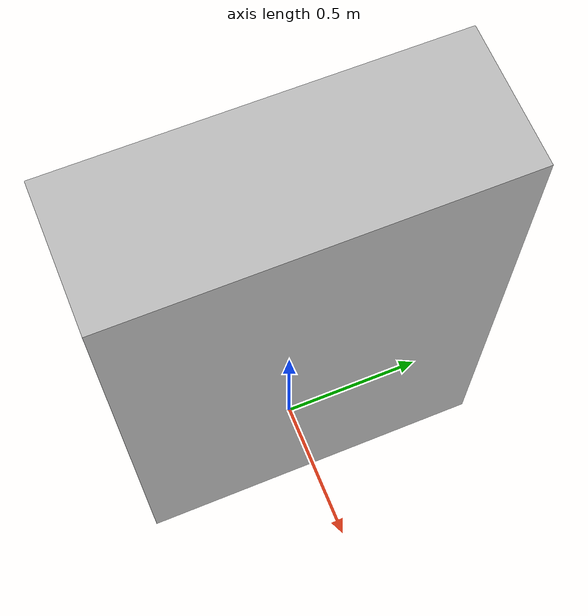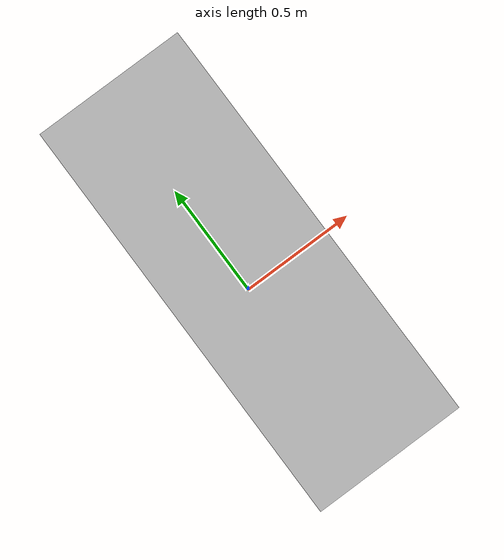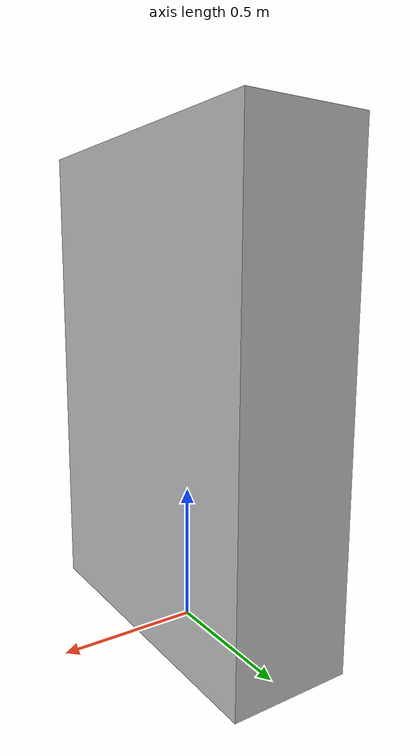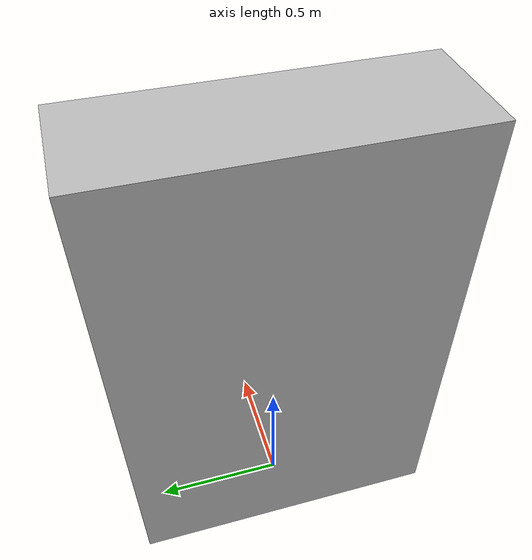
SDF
<?xml version="1.0"?>
<sdf version="1.6">
  <model name="rwc2017/cabinet_brown_high">
    <link name="1_link">
      <collision name="1_col">
        <geometry>
          <box>
            <size>0.44 1.2 1.74</size>
          </box>
        </geometry>
      </collision>
      <visual name="1_vis">
        <geometry>
          <box>
            <size>0.44 1.2 1.74</size>
          </box>
        </geometry>
      </visual>
      <pose>0 0 0.87 0 0 0</pose>
    </link>
    <link name="in_front_of">
      <virtual_volume name="in_front_of_vv">
        <geometry>
          <box>
            <size>0.2 1.0 0.01</size>
          </box>
        </geometry>
        <pose>0.72 0.0 0.005 0 0 0</pose>
      </virtual_volume>
    </link>
    <static>true</static>
  </model>
</sdf>
